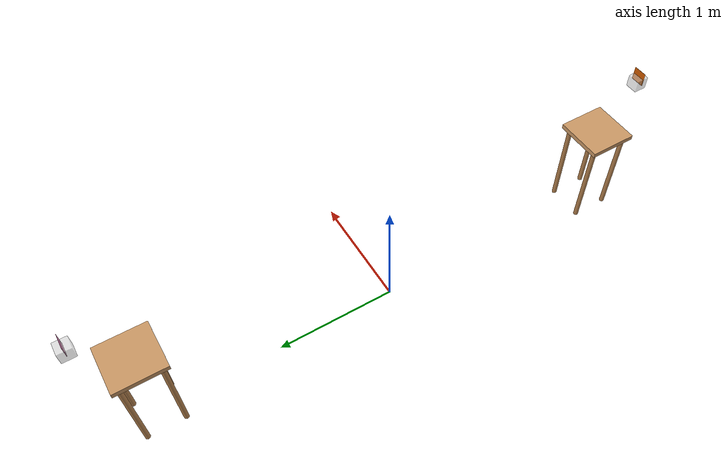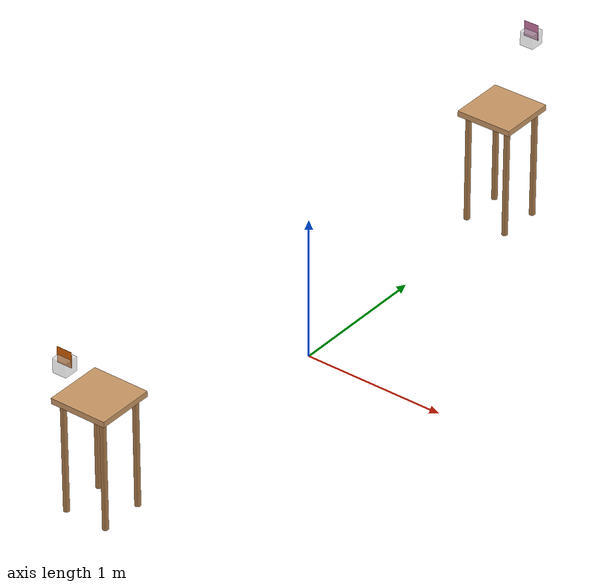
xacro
<?xml version="1.0"?>
<robot xmlns:xacro="http://ros.org/wiki/xacro" name="standalone_apriltag_cube">

  <!-- 定义参数 -->
  <xacro:property name="table_height" value="0.8" />  <!-- 桌子高度参数 -->
  <xacro:property name="table_thickness" value="0.04" />  <!-- 桌面厚度 -->
  <xacro:property name="leg_radius" value="0.02" />  <!-- 桌腿半径 -->

  <!-- 第一个桌子位置参数 -->
  <xacro:property name="table1_x" value="0.0" />
  <xacro:property name="table1_y" value="-2.0" />
  <xacro:property name="table1_z" value="${table_height}" />

  <!-- 第二个桌子位置参数 -->
  <xacro:property name="table2_x" value="0.0" />
  <xacro:property name="table2_y" value="2.0" />
  <xacro:property name="table2_z" value="${table_height}" />

  <!-- 立方体位置参数 -->
  <xacro:property name="cube_x" value="0.0" />
  <xacro:property name="cube_y1" value="-2.3" />
  <xacro:property name="cube_y2" value="2.3" />
  <xacro:property name="cube_z" value="1.2" />

  <!-- 引入apriltag -->
  <xacro:include filename="$(find kuavo_assets)/models/apriltag/urdf/apriltag.xacro"/>

  <!-- 添加一个世界链接作为根链接 -->
  <link name="world"/>

  <!-- 创建第一个桌子链接 -->
  <link name="table1_link">
    <visual>
      <geometry>
        <box size="0.4 0.4 ${table_thickness}"/>
      </geometry>
      <material name="wood">
        <color rgba="0.8 0.6 0.4 1.0"/>
      </material>
    </visual>
    <collision>
      <geometry>
        <box size="0.4 0.4 ${table_thickness}"/>
      </geometry>
    </collision>
    <inertial>
      <mass value="5.0"/>
      <inertia ixx="0.1" ixy="0" ixz="0" iyy="0.1" iyz="0" izz="0.1"/>
    </inertial>
  </link>

  <!-- 添加Gazebo物理属性 -->
  <gazebo reference="table1_link">
    <material>Gazebo/Wood</material>
    <mu1>0.5</mu1>
    <mu2>0.5</mu2>
    <kp>1000000.0</kp>
    <kd>100.0</kd>
    <minDepth>0.001</minDepth>
    <maxVel>1.0</maxVel>
    <maxContacts>20</maxContacts>
  </gazebo>

  <!-- 将世界链接与第一个桌子连接 -->
  <joint name="world_to_table1_joint" type="fixed">
    <parent link="world"/>
    <child link="table1_link"/>
    <origin xyz="${table1_x} ${table1_y} ${table1_z}" rpy="0 0 0"/>
  </joint>

  <!-- 创建第二个桌子链接 -->
  <link name="table2_link">
    <visual>
      <geometry>
        <box size="0.4 0.4 ${table_thickness}"/>
      </geometry>
      <material name="wood">
        <color rgba="0.8 0.6 0.4 1.0"/>
      </material>
    </visual>
    <collision>
      <geometry>
        <box size="0.4 0.4 ${table_thickness}"/>
      </geometry>
    </collision>
    <inertial>
      <mass value="5.0"/>
      <inertia ixx="0.1" ixy="0" ixz="0" iyy="0.1" iyz="0" izz="0.1"/>
    </inertial>
  </link>

  <!-- 添加Gazebo物理属性 -->
  <gazebo reference="table2_link">
    <material>Gazebo/Wood</material>
    <mu1>0.5</mu1>
    <mu2>0.5</mu2>
    <kp>1000000.0</kp>
    <kd>100.0</kd>
    <minDepth>0.001</minDepth>
    <maxVel>1.0</maxVel>
    <maxContacts>20</maxContacts>
  </gazebo>

  <!-- 将世界链接与第二个桌子连接 -->
  <joint name="world_to_table2_joint" type="fixed">
    <parent link="world"/>
    <child link="table2_link"/>
    <origin xyz="${table2_x} ${table2_y} ${table2_z}" rpy="0 0 0"/>
  </joint>

  <!-- 创建第一个桌子的四条桌腿 -->
  <xacro:macro name="table_leg" params="name x y">
    <link name="${name}">
      <visual>
        <geometry>
          <cylinder radius="${leg_radius}" length="${table_height}"/>
        </geometry>
        <material name="wood">
          <color rgba="0.7 0.5 0.3 1.0"/>
        </material>
      </visual>
      <collision>
        <geometry>
          <cylinder radius="${leg_radius}" length="${table_height}"/>
        </geometry>
      </collision>
      <inertial>
        <mass value="0.5"/>
        <inertia ixx="0.01" ixy="0" ixz="0" iyy="0.01" iyz="0" izz="0.001"/>
      </inertial>
    </link>

    <gazebo reference="${name}">
      <material>Gazebo/Wood</material>
      <mu1>0.5</mu1>
      <mu2>0.5</mu2>
    </gazebo>
  </xacro:macro>

  <!-- 创建第一个桌子的桌腿 -->
  <xacro:table_leg name="table1_leg1" x="0.15" y="0.15"/>
  <xacro:table_leg name="table1_leg2" x="-0.15" y="0.15"/>
  <xacro:table_leg name="table1_leg3" x="0.15" y="-0.15"/>
  <xacro:table_leg name="table1_leg4" x="-0.15" y="-0.15"/>

  <!-- 创建第二个桌子的桌腿 -->
  <xacro:table_leg name="table2_leg1" x="0.15" y="0.15"/>
  <xacro:table_leg name="table2_leg2" x="-0.15" y="0.15"/>
  <xacro:table_leg name="table2_leg3" x="0.15" y="-0.15"/>
  <xacro:table_leg name="table2_leg4" x="-0.15" y="-0.15"/>

  <!-- 连接第一个桌子的桌腿 -->
  <joint name="table1_to_leg1_joint" type="fixed">
    <parent link="table1_link"/>
    <child link="table1_leg1"/>
    <origin xyz="0.15 0.15 ${-table_height/2}" rpy="0 0 0"/>
  </joint>

  <joint name="table1_to_leg2_joint" type="fixed">
    <parent link="table1_link"/>
    <child link="table1_leg2"/>
    <origin xyz="-0.15 0.15 ${-table_height/2}" rpy="0 0 0"/>
  </joint>

  <joint name="table1_to_leg3_joint" type="fixed">
    <parent link="table1_link"/>
    <child link="table1_leg3"/>
    <origin xyz="0.15 -0.15 ${-table_height/2}" rpy="0 0 0"/>
  </joint>

  <joint name="table1_to_leg4_joint" type="fixed">
    <parent link="table1_link"/>
    <child link="table1_leg4"/>
    <origin xyz="-0.15 -0.15 ${-table_height/2}" rpy="0 0 0"/>
  </joint>

  <!-- 连接第二个桌子的桌腿 -->
  <joint name="table2_to_leg1_joint" type="fixed">
    <parent link="table2_link"/>
    <child link="table2_leg1"/>
    <origin xyz="0.15 0.15 ${-table_height/2}" rpy="0 0 0"/>
  </joint>

  <joint name="table2_to_leg2_joint" type="fixed">
    <parent link="table2_link"/>
    <child link="table2_leg2"/>
    <origin xyz="-0.15 0.15 ${-table_height/2}" rpy="0 0 0"/>
  </joint>

  <joint name="table2_to_leg3_joint" type="fixed">
    <parent link="table2_link"/>
    <child link="table2_leg3"/>
    <origin xyz="0.15 -0.15 ${-table_height/2}" rpy="0 0 0"/>
  </joint>

  <joint name="table2_to_leg4_joint" type="fixed">
    <parent link="table2_link"/>
    <child link="table2_leg4"/>
    <origin xyz="-0.15 -0.15 ${-table_height/2}" rpy="0 0 0"/>
  </joint>

  <!-- 创建第一个基础链接作为立方体的中心 -->
  <link name="apriltag_cube_base1">
    <visual>
      <geometry>
        <box size="0.1 0.1 0.1"/>
      </geometry>
      <material>
        <color rgba="0.8 0.8 0.8 0.5"/>
      </material>
    </visual>
    <collision>
      <geometry>
        <box size="0.1 0.1 0.1"/>
      </geometry>
    </collision>
    <inertial>
      <mass value="0.1"/>
      <inertia ixx="0.0001" ixy="0" ixz="0" iyy="0.0001" iyz="0" izz="0.0001"/>
    </inertial>
  </link>

  <!-- 创建第二个基础链接作为立方体的中心 -->
  <link name="apriltag_cube_base2">
    <visual>
      <geometry>
        <box size="0.1 0.1 0.1"/>
      </geometry>
      <material>
        <color rgba="0.8 0.8 0.8 0.5"/>
      </material>
    </visual>
    <collision>
      <geometry>
        <box size="0.1 0.1 0.1"/>
      </geometry>
    </collision>
    <inertial>
      <mass value="0.1"/>
      <inertia ixx="0.0001" ixy="0" ixz="0" iyy="0.0001" iyz="0" izz="0.0001"/>
    </inertial>
  </link>

  <!-- 将第一个立方体直接连接到世界坐标系实现对称 -->
  <joint name="world_to_cube1_joint" type="fixed">
    <parent link="world"/>
    <child link="apriltag_cube_base1"/>
    <origin xyz="${cube_x} ${cube_y1} ${cube_z}" rpy="0 0 0"/>
  </joint>

  <!-- 将第二个立方体直接连接到世界坐标系实现对称 -->
  <joint name="world_to_cube2_joint" type="fixed">
    <parent link="world"/>
    <child link="apriltag_cube_base2"/>
    <origin xyz="${cube_x} ${cube_y2} ${cube_z}" rpy="0 0 0"/>
  </joint>

  <!-- 为第一个立方体添加ID为1的AprilTag -->
  <xacro:apriltag_marker parent_link="apriltag_cube_base1" id="3">
    <origin xyz="0 0 0.05" rpy="1.5708 0 0"/>
  </xacro:apriltag_marker>

  <!-- 为第二个立方体添加ID为2的AprilTag -->
  <xacro:apriltag_marker parent_link="apriltag_cube_base2" id="4">
    <origin xyz="0 0 0.05" rpy="1.5708 0 0"/>
  </xacro:apriltag_marker>

  <!-- 确保您已为这些ID创建了相应的材质文件，放在 kuavo_assets/models/apriltag/materials/ 目录下 -->
</robot>

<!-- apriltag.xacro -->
<robot xmlns:xacro="http://ros.org/wiki/xacro" name="apriltag_marker">

  <xacro:macro name="apriltag_marker" params="parent_link *origin id">
    <!-- 定义二维码的Link -->
    <link name="apriltag_marker_${id}">
      <visual>
        <origin xyz="0 0 0" rpy="0 0 0"/>
        <geometry>
          <box size="0.11 0.11 0.001"/>
        </geometry>
      </visual>
      <collision>
        <geometry>
          <box size="0.11 0.11 0.001"/>
        </geometry>
      </collision>
    </link>

    <joint name="apriltag_joint_${id}" type="fixed">
      <xacro:insert_block name="origin" />
      <parent link="${parent_link}"/>
      <child link="apriltag_marker_${id}"/>
    </joint>

    <gazebo reference="apriltag_marker_${id}">
      <visual>
        <material>
          <script>
            <uri>file://$(find kuavo_assets)/models/apriltag/materials/apriltag_${id}.material</uri>
            <name>AprilTag/Marker${id}</name>
          </script>
          <shader type="pixel">
            <normal_map>__default__</normal_map>
          </shader>
          <double_sided>false</double_sided>
        </material>
      </visual>
    </gazebo>
  </xacro:macro>
</robot>
